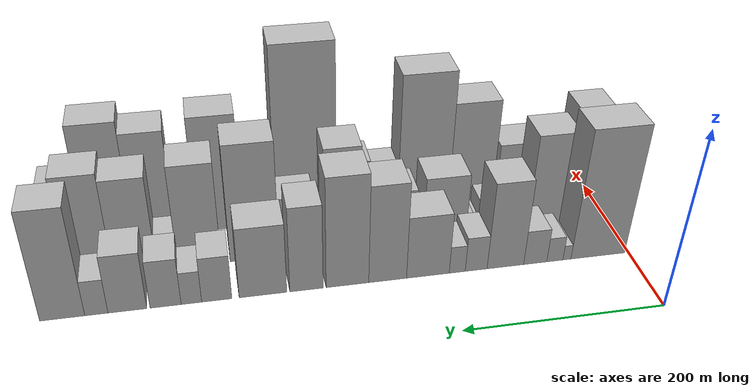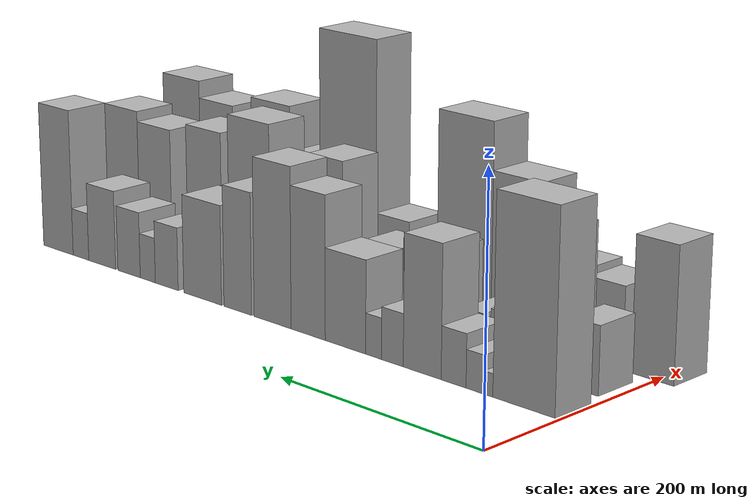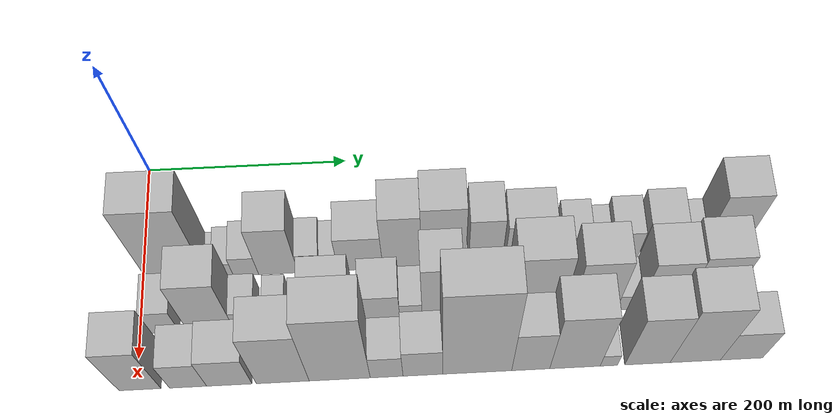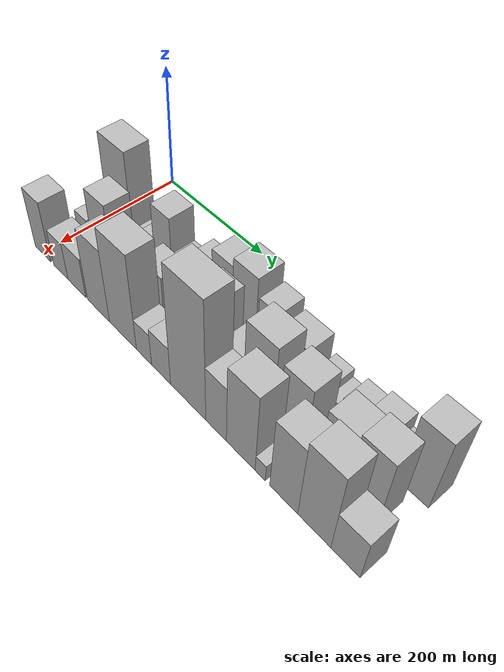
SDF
<sdf version="1.6">
 <world name="default">
  <model name="building_20">
   <static>1</static>
   <pose>100.0000 33.2290 0 0.000000 0.000000 0.000000</pose>
   <link name="link">
    <pose>0 0 78.00 0 0 0</pose>
    <collision name="collision"><geometry><box><size>40.0000 58.2275 156.0000</size></box></geometry></collision>
    <visual name="visual">
     <cast_shadows>0</cast_shadows>
     <geometry><box><size>40.0000 58.2275 156.0000</size></box></geometry>
     <material>
      <script>
       <uri>model://HANNAS_wall/materials/scripts</uri>
       <uri>model://HANNAS_wall/materials/textures</uri>
       <name>vrc/HANNAS_wall</name>
      </script>
     </material>
    </visual>
   </link>
  </model>
  <model name="building_21">
   <static>1</static>
   <pose>100.0000 66.6488 0 0.000000 0.000000 0.000000</pose>
   <link name="link">
    <pose>0 0 9.00 0 0 0</pose>
    <collision name="collision"><geometry><box><size>40.0000 8.6122 18.0000</size></box></geometry></collision>
    <visual name="visual">
     <cast_shadows>0</cast_shadows>
     <geometry><box><size>40.0000 8.6122 18.0000</size></box></geometry>
     <material>
      <script>
       <uri>model://HANNAS_wall/materials/scripts</uri>
       <uri>model://HANNAS_wall/materials/textures</uri>
       <name>vrc/HANNAS_wall</name>
      </script>
     </material>
    </visual>
   </link>
  </model>
  <model name="building_22">
   <static>1</static>
   <pose>100.0000 79.5975 0 0.000000 0.000000 0.000000</pose>
   <link name="link">
    <pose>0 0 15.00 0 0 0</pose>
    <collision name="collision"><geometry><box><size>40.0000 17.2851 30.0000</size></box></geometry></collision>
    <visual name="visual">
     <cast_shadows>0</cast_shadows>
     <geometry><box><size>40.0000 17.2851 30.0000</size></box></geometry>
     <material>
      <script>
       <uri>model://HANNAS_wall/materials/scripts</uri>
       <uri>model://HANNAS_wall/materials/textures</uri>
       <name>vrc/HANNAS_wall</name>
      </script>
     </material>
    </visual>
   </link>
  </model>
  <model name="building_23">
   <static>1</static>
   <pose>100.0000 100.5448 0 0.000000 0.000000 0.000000</pose>
   <link name="link">
    <pose>0 0 21.00 0 0 0</pose>
    <collision name="collision"><geometry><box><size>40.0000 24.6096 42.0000</size></box></geometry></collision>
    <visual name="visual">
     <cast_shadows>0</cast_shadows>
     <geometry><box><size>40.0000 24.6096 42.0000</size></box></geometry>
     <material>
      <script>
       <uri>model://HANNAS_wall/materials/scripts</uri>
       <uri>model://HANNAS_wall/materials/textures</uri>
       <name>vrc/HANNAS_wall</name>
      </script>
     </material>
    </visual>
   </link>
  </model>
  <model name="building_24">
   <static>1</static>
   <pose>100.0000 132.1193 0 0.000000 0.000000 0.000000</pose>
   <link name="link">
    <pose>0 0 52.50 0 0 0</pose>
    <collision name="collision"><geometry><box><size>40.0000 38.5394 105.0000</size></box></geometry></collision>
    <visual name="visual">
     <cast_shadows>0</cast_shadows>
     <geometry><box><size>40.0000 38.5394 105.0000</size></box></geometry>
     <material>
      <script>
       <uri>model://HANNAS_wall/materials/scripts</uri>
       <uri>model://HANNAS_wall/materials/textures</uri>
       <name>vrc/HANNAS_wall</name>
      </script>
     </material>
    </visual>
   </link>
  </model>
  <model name="building_25">
   <static>1</static>
   <pose>100.0000 162.7643 0 0.000000 0.000000 0.000000</pose>
   <link name="link">
    <pose>0 0 21.00 0 0 0</pose>
    <collision name="collision"><geometry><box><size>40.0000 22.7505 42.0000</size></box></geometry></collision>
    <visual name="visual">
     <cast_shadows>0</cast_shadows>
     <geometry><box><size>40.0000 22.7505 42.0000</size></box></geometry>
     <material>
      <script>
       <uri>model://HANNAS_wall/materials/scripts</uri>
       <uri>model://HANNAS_wall/materials/textures</uri>
       <name>vrc/HANNAS_wall</name>
      </script>
     </material>
    </visual>
   </link>
  </model>
  <model name="building_26">
   <static>1</static>
   <pose>100.0000 182.4364 0 0.000000 0.000000 0.000000</pose>
   <link name="link">
    <pose>0 0 16.50 0 0 0</pose>
    <collision name="collision"><geometry><box><size>40.0000 16.5937 33.0000</size></box></geometry></collision>
    <visual name="visual">
     <cast_shadows>0</cast_shadows>
     <geometry><box><size>40.0000 16.5937 33.0000</size></box></geometry>
     <material>
      <script>
       <uri>model://HANNAS_wall/materials/scripts</uri>
       <uri>model://HANNAS_wall/materials/textures</uri>
       <name>vrc/HANNAS_wall</name>
      </script>
     </material>
    </visual>
   </link>
  </model>
  <model name="building_27">
   <static>1</static>
   <pose>100.0000 212.7019 0 0.000000 0.000000 0.000000</pose>
   <link name="link">
    <pose>0 0 37.50 0 0 0</pose>
    <collision name="collision"><geometry><box><size>40.0000 43.9373 75.0000</size></box></geometry></collision>
    <visual name="visual">
     <cast_shadows>0</cast_shadows>
     <geometry><box><size>40.0000 43.9373 75.0000</size></box></geometry>
     <material>
      <script>
       <uri>model://HANNAS_wall/materials/scripts</uri>
       <uri>model://HANNAS_wall/materials/textures</uri>
       <name>vrc/HANNAS_wall</name>
      </script>
     </material>
    </visual>
   </link>
  </model>
  <model name="building_28">
   <static>1</static>
   <pose>100.0000 253.8108 0 0.000000 0.000000 0.000000</pose>
   <link name="link">
    <pose>0 0 58.50 0 0 0</pose>
    <collision name="collision"><geometry><box><size>40.0000 38.2804 117.0000</size></box></geometry></collision>
    <visual name="visual">
     <cast_shadows>0</cast_shadows>
     <geometry><box><size>40.0000 38.2804 117.0000</size></box></geometry>
     <material>
      <script>
       <uri>model://HANNAS_wall/materials/scripts</uri>
       <uri>model://HANNAS_wall/materials/textures</uri>
       <name>vrc/HANNAS_wall</name>
      </script>
     </material>
    </visual>
   </link>
  </model>
  <model name="building_29">
   <static>1</static>
   <pose>100.0000 294.3187 0 0.000000 0.000000 0.000000</pose>
   <link name="link">
    <pose>0 0 66.00 0 0 0</pose>
    <collision name="collision"><geometry><box><size>40.0000 42.7354 132.0000</size></box></geometry></collision>
    <visual name="visual">
     <cast_shadows>0</cast_shadows>
     <geometry><box><size>40.0000 42.7354 132.0000</size></box></geometry>
     <material>
      <script>
       <uri>model://HANNAS_wall/materials/scripts</uri>
       <uri>model://HANNAS_wall/materials/textures</uri>
       <name>vrc/HANNAS_wall</name>
      </script>
     </material>
    </visual>
   </link>
  </model>
  <model name="building_30">
   <static>1</static>
   <pose>100.0000 335.1427 0 0.000000 0.000000 0.000000</pose>
   <link name="link">
    <pose>0 0 51.00 0 0 0</pose>
    <collision name="collision"><geometry><box><size>40.0000 32.9125 102.0000</size></box></geometry></collision>
    <visual name="visual">
     <cast_shadows>0</cast_shadows>
     <geometry><box><size>40.0000 32.9125 102.0000</size></box></geometry>
     <material>
      <script>
       <uri>model://HANNAS_wall/materials/scripts</uri>
       <uri>model://HANNAS_wall/materials/textures</uri>
       <name>vrc/HANNAS_wall</name>
      </script>
     </material>
    </visual>
   </link>
  </model>
  <model name="building_31">
   <static>1</static>
   <pose>100.0000 377.8767 0 0.000000 0.000000 0.000000</pose>
   <link name="link">
    <pose>0 0 42.00 0 0 0</pose>
    <collision name="collision"><geometry><box><size>40.0000 46.5556 84.0000</size></box></geometry></collision>
    <visual name="visual">
     <cast_shadows>0</cast_shadows>
     <geometry><box><size>40.0000 46.5556 84.0000</size></box></geometry>
     <material>
      <script>
       <uri>model://HANNAS_wall/materials/scripts</uri>
       <uri>model://HANNAS_wall/materials/textures</uri>
       <name>vrc/HANNAS_wall</name>
      </script>
     </material>
    </visual>
   </link>
  </model>
  <model name="building_32">
   <static>1</static>
   <pose>100.0000 422.6881 0 0.000000 0.000000 0.000000</pose>
   <link name="link">
    <pose>0 0 27.00 0 0 0</pose>
    <collision name="collision"><geometry><box><size>40.0000 29.0671 54.0000</size></box></geometry></collision>
    <visual name="visual">
     <cast_shadows>0</cast_shadows>
     <geometry><box><size>40.0000 29.0671 54.0000</size></box></geometry>
     <material>
      <script>
       <uri>model://HANNAS_wall/materials/scripts</uri>
       <uri>model://HANNAS_wall/materials/textures</uri>
       <name>vrc/HANNAS_wall</name>
      </script>
     </material>
    </visual>
   </link>
  </model>
  <model name="building_33">
   <static>1</static>
   <pose>100.0000 447.0057 0 0.000000 0.000000 0.000000</pose>
   <link name="link">
    <pose>0 0 19.50 0 0 0</pose>
    <collision name="collision"><geometry><box><size>40.0000 19.5682 39.0000</size></box></geometry></collision>
    <visual name="visual">
     <cast_shadows>0</cast_shadows>
     <geometry><box><size>40.0000 19.5682 39.0000</size></box></geometry>
     <material>
      <script>
       <uri>model://HANNAS_wall/materials/scripts</uri>
       <uri>model://HANNAS_wall/materials/textures</uri>
       <name>vrc/HANNAS_wall</name>
      </script>
     </material>
    </visual>
   </link>
  </model>
  <model name="building_34">
   <static>1</static>
   <pose>100.0000 471.5658 0 0.000000 0.000000 0.000000</pose>
   <link name="link">
    <pose>0 0 28.50 0 0 0</pose>
    <collision name="collision"><geometry><box><size>40.0000 29.5520 57.0000</size></box></geometry></collision>
    <visual name="visual">
     <cast_shadows>0</cast_shadows>
     <geometry><box><size>40.0000 29.5520 57.0000</size></box></geometry>
     <material>
      <script>
       <uri>model://HANNAS_wall/materials/scripts</uri>
       <uri>model://HANNAS_wall/materials/textures</uri>
       <name>vrc/HANNAS_wall</name>
      </script>
     </material>
    </visual>
   </link>
  </model>
  <model name="building_35">
   <static>1</static>
   <pose>100.0000 507.5285 0 0.000000 0.000000 0.000000</pose>
   <link name="link">
    <pose>0 0 34.50 0 0 0</pose>
    <collision name="collision"><geometry><box><size>40.0000 36.3733 69.0000</size></box></geometry></collision>
    <visual name="visual">
     <cast_shadows>0</cast_shadows>
     <geometry><box><size>40.0000 36.3733 69.0000</size></box></geometry>
     <material>
      <script>
       <uri>model://HANNAS_wall/materials/scripts</uri>
       <uri>model://HANNAS_wall/materials/textures</uri>
       <name>vrc/HANNAS_wall</name>
      </script>
     </material>
    </visual>
   </link>
  </model>
  <model name="building_36">
   <static>1</static>
   <pose>100.0000 536.4950 0 0.000000 0.000000 0.000000</pose>
   <link name="link">
    <pose>0 0 21.00 0 0 0</pose>
    <collision name="collision"><geometry><box><size>40.0000 21.5597 42.0000</size></box></geometry></collision>
    <visual name="visual">
     <cast_shadows>0</cast_shadows>
     <geometry><box><size>40.0000 21.5597 42.0000</size></box></geometry>
     <material>
      <script>
       <uri>model://HANNAS_wall/materials/scripts</uri>
       <uri>model://HANNAS_wall/materials/textures</uri>
       <name>vrc/HANNAS_wall</name>
      </script>
     </material>
    </visual>
   </link>
  </model>
  <model name="building_37">
   <static>1</static>
   <pose>100.0000 568.0260 0 0.000000 0.000000 0.000000</pose>
   <link name="link">
    <pose>0 0 64.50 0 0 0</pose>
    <collision name="collision"><geometry><box><size>40.0000 41.5023 129.0000</size></box></geometry></collision>
    <visual name="visual">
     <cast_shadows>0</cast_shadows>
     <geometry><box><size>40.0000 41.5023 129.0000</size></box></geometry>
     <material>
      <script>
       <uri>model://HANNAS_wall/materials/scripts</uri>
       <uri>model://HANNAS_wall/materials/textures</uri>
       <name>vrc/HANNAS_wall</name>
      </script>
     </material>
    </visual>
   </link>
  </model>
  <model name="building_52">
   <static>1</static>
   <pose>155.0000 23.7741 0 0.000000 0.000000 0.000000</pose>
   <link name="link">
    <pose>0 0 27.00 0 0 0</pose>
    <collision name="collision"><geometry><box><size>40.0000 28.3925 54.0000</size></box></geometry></collision>
    <visual name="visual">
     <cast_shadows>0</cast_shadows>
     <geometry><box><size>40.0000 28.3925 54.0000</size></box></geometry>
     <material>
      <script>
       <uri>model://HANNAS_wall/materials/scripts</uri>
       <uri>model://HANNAS_wall/materials/textures</uri>
       <name>vrc/HANNAS_wall</name>
      </script>
     </material>
    </visual>
   </link>
  </model>
  <model name="building_53">
   <static>1</static>
   <pose>155.0000 67.9589 0 0.000000 0.000000 0.000000</pose>
   <link name="link">
    <pose>0 0 58.50 0 0 0</pose>
    <collision name="collision"><geometry><box><size>40.0000 43.9771 117.0000</size></box></geometry></collision>
    <visual name="visual">
     <cast_shadows>0</cast_shadows>
     <geometry><box><size>40.0000 43.9771 117.0000</size></box></geometry>
     <material>
      <script>
       <uri>model://HANNAS_wall/materials/scripts</uri>
       <uri>model://HANNAS_wall/materials/textures</uri>
       <name>vrc/HANNAS_wall</name>
      </script>
     </material>
    </visual>
   </link>
  </model>
  <model name="building_54">
   <static>1</static>
   <pose>155.0000 101.7364 0 0.000000 0.000000 0.000000</pose>
   <link name="link">
    <pose>0 0 21.00 0 0 0</pose>
    <collision name="collision"><geometry><box><size>40.0000 23.5777 42.0000</size></box></geometry></collision>
    <visual name="visual">
     <cast_shadows>0</cast_shadows>
     <geometry><box><size>40.0000 23.5777 42.0000</size></box></geometry>
     <material>
      <script>
       <uri>model://HANNAS_wall/materials/scripts</uri>
       <uri>model://HANNAS_wall/materials/textures</uri>
       <name>vrc/HANNAS_wall</name>
      </script>
     </material>
    </visual>
   </link>
  </model>
  <model name="building_55">
   <static>1</static>
   <pose>155.0000 131.0932 0 0.000000 0.000000 0.000000</pose>
   <link name="link">
    <pose>0 0 18.00 0 0 0</pose>
    <collision name="collision"><geometry><box><size>40.0000 21.1361 36.0000</size></box></geometry></collision>
    <visual name="visual">
     <cast_shadows>0</cast_shadows>
     <geometry><box><size>40.0000 21.1361 36.0000</size></box></geometry>
     <material>
      <script>
       <uri>model://HANNAS_wall/materials/scripts</uri>
       <uri>model://HANNAS_wall/materials/textures</uri>
       <name>vrc/HANNAS_wall</name>
      </script>
     </material>
    </visual>
   </link>
  </model>
  <model name="building_56">
   <static>1</static>
   <pose>155.0000 144.7560 0 0.000000 0.000000 0.000000</pose>
   <link name="link">
    <pose>0 0 7.50 0 0 0</pose>
    <collision name="collision"><geometry><box><size>40.0000 6.1895 15.0000</size></box></geometry></collision>
    <visual name="visual">
     <cast_shadows>0</cast_shadows>
     <geometry><box><size>40.0000 6.1895 15.0000</size></box></geometry>
     <material>
      <script>
       <uri>model://HANNAS_wall/materials/scripts</uri>
       <uri>model://HANNAS_wall/materials/textures</uri>
       <name>vrc/HANNAS_wall</name>
      </script>
     </material>
    </visual>
   </link>
  </model>
  <model name="building_57">
   <static>1</static>
   <pose>155.0000 152.7059 0 0.000000 0.000000 0.000000</pose>
   <link name="link">
    <pose>0 0 10.50 0 0 0</pose>
    <collision name="collision"><geometry><box><size>40.0000 9.7101 21.0000</size></box></geometry></collision>
    <visual name="visual">
     <cast_shadows>0</cast_shadows>
     <geometry><box><size>40.0000 9.7101 21.0000</size></box></geometry>
     <material>
      <script>
       <uri>model://HANNAS_wall/materials/scripts</uri>
       <uri>model://HANNAS_wall/materials/textures</uri>
       <name>vrc/HANNAS_wall</name>
      </script>
     </material>
    </visual>
   </link>
  </model>
  <model name="building_58">
   <static>1</static>
   <pose>155.0000 180.6804 0 0.000000 0.000000 0.000000</pose>
   <link name="link">
    <pose>0 0 39.00 0 0 0</pose>
    <collision name="collision"><geometry><box><size>40.0000 46.2390 78.0000</size></box></geometry></collision>
    <visual name="visual">
     <cast_shadows>0</cast_shadows>
     <geometry><box><size>40.0000 46.2390 78.0000</size></box></geometry>
     <material>
      <script>
       <uri>model://HANNAS_wall/materials/scripts</uri>
       <uri>model://HANNAS_wall/materials/textures</uri>
       <name>vrc/HANNAS_wall</name>
      </script>
     </material>
    </visual>
   </link>
  </model>
  <model name="building_59">
   <static>1</static>
   <pose>155.0000 230.5927 0 0.000000 0.000000 0.000000</pose>
   <link name="link">
    <pose>0 0 33.00 0 0 0</pose>
    <collision name="collision"><geometry><box><size>40.0000 37.5855 66.0000</size></box></geometry></collision>
    <visual name="visual">
     <cast_shadows>0</cast_shadows>
     <geometry><box><size>40.0000 37.5855 66.0000</size></box></geometry>
     <material>
      <script>
       <uri>model://HANNAS_wall/materials/scripts</uri>
       <uri>model://HANNAS_wall/materials/textures</uri>
       <name>vrc/HANNAS_wall</name>
      </script>
     </material>
    </visual>
   </link>
  </model>
  <model name="building_60">
   <static>1</static>
   <pose>155.0000 260.0713 0 0.000000 0.000000 0.000000</pose>
   <link name="link">
    <pose>0 0 21.00 0 0 0</pose>
    <collision name="collision"><geometry><box><size>40.0000 21.3718 42.0000</size></box></geometry></collision>
    <visual name="visual">
     <cast_shadows>0</cast_shadows>
     <geometry><box><size>40.0000 21.3718 42.0000</size></box></geometry>
     <material>
      <script>
       <uri>model://HANNAS_wall/materials/scripts</uri>
       <uri>model://HANNAS_wall/materials/textures</uri>
       <name>vrc/HANNAS_wall</name>
      </script>
     </material>
    </visual>
   </link>
  </model>
  <model name="building_61">
   <static>1</static>
   <pose>155.0000 289.8224 0 0.000000 0.000000 0.000000</pose>
   <link name="link">
    <pose>0 0 63.00 0 0 0</pose>
    <collision name="collision"><geometry><box><size>40.0000 38.1304 126.0000</size></box></geometry></collision>
    <visual name="visual">
     <cast_shadows>0</cast_shadows>
     <geometry><box><size>40.0000 38.1304 126.0000</size></box></geometry>
     <material>
      <script>
       <uri>model://HANNAS_wall/materials/scripts</uri>
       <uri>model://HANNAS_wall/materials/textures</uri>
       <name>vrc/HANNAS_wall</name>
      </script>
     </material>
    </visual>
   </link>
  </model>
  <model name="building_62">
   <static>1</static>
   <pose>155.0000 336.8014 0 0.000000 0.000000 0.000000</pose>
   <link name="link">
    <pose>0 0 36.00 0 0 0</pose>
    <collision name="collision"><geometry><box><size>40.0000 37.8276 72.0000</size></box></geometry></collision>
    <visual name="visual">
     <cast_shadows>0</cast_shadows>
     <geometry><box><size>40.0000 37.8276 72.0000</size></box></geometry>
     <material>
      <script>
       <uri>model://HANNAS_wall/materials/scripts</uri>
       <uri>model://HANNAS_wall/materials/textures</uri>
       <name>vrc/HANNAS_wall</name>
      </script>
     </material>
    </visual>
   </link>
  </model>
  <model name="building_63">
   <static>1</static>
   <pose>155.0000 380.7532 0 0.000000 0.000000 0.000000</pose>
   <link name="link">
    <pose>0 0 70.50 0 0 0</pose>
    <collision name="collision"><geometry><box><size>40.0000 50.0759 141.0000</size></box></geometry></collision>
    <visual name="visual">
     <cast_shadows>0</cast_shadows>
     <geometry><box><size>40.0000 50.0759 141.0000</size></box></geometry>
     <material>
      <script>
       <uri>model://HANNAS_wall/materials/scripts</uri>
       <uri>model://HANNAS_wall/materials/textures</uri>
       <name>vrc/HANNAS_wall</name>
      </script>
     </material>
    </visual>
   </link>
  </model>
  <model name="building_64">
   <static>1</static>
   <pose>155.0000 436.6621 0 0.000000 0.000000 0.000000</pose>
   <link name="link">
    <pose>0 0 61.50 0 0 0</pose>
    <collision name="collision"><geometry><box><size>40.0000 43.7420 123.0000</size></box></geometry></collision>
    <visual name="visual">
     <cast_shadows>0</cast_shadows>
     <geometry><box><size>40.0000 43.7420 123.0000</size></box></geometry>
     <material>
      <script>
       <uri>model://HANNAS_wall/materials/scripts</uri>
       <uri>model://HANNAS_wall/materials/textures</uri>
       <name>vrc/HANNAS_wall</name>
      </script>
     </material>
    </visual>
   </link>
  </model>
  <model name="building_65">
   <static>1</static>
   <pose>155.0000 468.9399 0 0.000000 0.000000 0.000000</pose>
   <link name="link">
    <pose>0 0 18.00 0 0 0</pose>
    <collision name="collision"><geometry><box><size>40.0000 20.8135 36.0000</size></box></geometry></collision>
    <visual name="visual">
     <cast_shadows>0</cast_shadows>
     <geometry><box><size>40.0000 20.8135 36.0000</size></box></geometry>
     <material>
      <script>
       <uri>model://HANNAS_wall/materials/scripts</uri>
       <uri>model://HANNAS_wall/materials/textures</uri>
       <name>vrc/HANNAS_wall</name>
      </script>
     </material>
    </visual>
   </link>
  </model>
  <model name="building_66">
   <static>1</static>
   <pose>155.0000 500.9009 0 0.000000 0.000000 0.000000</pose>
   <link name="link">
    <pose>0 0 57.00 0 0 0</pose>
    <collision name="collision"><geometry><box><size>40.0000 43.1086 114.0000</size></box></geometry></collision>
    <visual name="visual">
     <cast_shadows>0</cast_shadows>
     <geometry><box><size>40.0000 43.1086 114.0000</size></box></geometry>
     <material>
      <script>
       <uri>model://HANNAS_wall/materials/scripts</uri>
       <uri>model://HANNAS_wall/materials/textures</uri>
       <name>vrc/HANNAS_wall</name>
      </script>
     </material>
    </visual>
   </link>
  </model>
  <model name="building_67">
   <static>1</static>
   <pose>155.0000 544.3453 0 0.000000 0.000000 0.000000</pose>
   <link name="link">
    <pose>0 0 61.50 0 0 0</pose>
    <collision name="collision"><geometry><box><size>40.0000 43.7800 123.0000</size></box></geometry></collision>
    <visual name="visual">
     <cast_shadows>0</cast_shadows>
     <geometry><box><size>40.0000 43.7800 123.0000</size></box></geometry>
     <material>
      <script>
       <uri>model://HANNAS_wall/materials/scripts</uri>
       <uri>model://HANNAS_wall/materials/textures</uri>
       <name>vrc/HANNAS_wall</name>
      </script>
     </material>
    </visual>
   </link>
  </model>
  <model name="building_82">
   <static>1</static>
   <pose>210.0000 2.9194 0 0.000000 0.000000 0.000000</pose>
   <link name="link">
    <pose>0 0 54.00 0 0 0</pose>
    <collision name="collision"><geometry><box><size>40.0000 39.2048 108.0000</size></box></geometry></collision>
    <visual name="visual">
     <cast_shadows>0</cast_shadows>
     <geometry><box><size>40.0000 39.2048 108.0000</size></box></geometry>
     <material>
      <script>
       <uri>model://HANNAS_wall/materials/scripts</uri>
       <uri>model://HANNAS_wall/materials/textures</uri>
       <name>vrc/HANNAS_wall</name>
      </script>
     </material>
    </visual>
   </link>
  </model>
  <model name="building_83">
   <static>1</static>
   <pose>210.0000 47.9344 0 0.000000 0.000000 0.000000</pose>
   <link name="link">
    <pose>0 0 33.00 0 0 0</pose>
    <collision name="collision"><geometry><box><size>40.0000 34.8252 66.0000</size></box></geometry></collision>
    <visual name="visual">
     <cast_shadows>0</cast_shadows>
     <geometry><box><size>40.0000 34.8252 66.0000</size></box></geometry>
     <material>
      <script>
       <uri>model://HANNAS_wall/materials/scripts</uri>
       <uri>model://HANNAS_wall/materials/textures</uri>
       <name>vrc/HANNAS_wall</name>
      </script>
     </material>
    </visual>
   </link>
  </model>
  <model name="building_84">
   <static>1</static>
   <pose>210.0000 86.5903 0 0.000000 0.000000 0.000000</pose>
   <link name="link">
    <pose>0 0 36.00 0 0 0</pose>
    <collision name="collision"><geometry><box><size>40.0000 42.4867 72.0000</size></box></geometry></collision>
    <visual name="visual">
     <cast_shadows>0</cast_shadows>
     <geometry><box><size>40.0000 42.4867 72.0000</size></box></geometry>
     <material>
      <script>
       <uri>model://HANNAS_wall/materials/scripts</uri>
       <uri>model://HANNAS_wall/materials/textures</uri>
       <name>vrc/HANNAS_wall</name>
      </script>
     </material>
    </visual>
   </link>
  </model>
  <model name="building_85">
   <static>1</static>
   <pose>210.0000 136.7199 0 0.000000 0.000000 0.000000</pose>
   <link name="link">
    <pose>0 0 64.50 0 0 0</pose>
    <collision name="collision"><geometry><box><size>40.0000 49.7726 129.0000</size></box></geometry></collision>
    <visual name="visual">
     <cast_shadows>0</cast_shadows>
     <geometry><box><size>40.0000 49.7726 129.0000</size></box></geometry>
     <material>
      <script>
       <uri>model://HANNAS_wall/materials/scripts</uri>
       <uri>model://HANNAS_wall/materials/textures</uri>
       <name>vrc/HANNAS_wall</name>
      </script>
     </material>
    </visual>
   </link>
  </model>
  <model name="building_86">
   <static>1</static>
   <pose>210.0000 190.3500 0 0.000000 0.000000 0.000000</pose>
   <link name="link">
    <pose>0 0 84.00 0 0 0</pose>
    <collision name="collision"><geometry><box><size>40.0000 57.4876 168.0000</size></box></geometry></collision>
    <visual name="visual">
     <cast_shadows>0</cast_shadows>
     <geometry><box><size>40.0000 57.4876 168.0000</size></box></geometry>
     <material>
      <script>
       <uri>model://HANNAS_wall/materials/scripts</uri>
       <uri>model://HANNAS_wall/materials/textures</uri>
       <name>vrc/HANNAS_wall</name>
      </script>
     </material>
    </visual>
   </link>
  </model>
  <model name="building_87">
   <static>1</static>
   <pose>210.0000 234.5464 0 0.000000 0.000000 0.000000</pose>
   <link name="link">
    <pose>0 0 28.50 0 0 0</pose>
    <collision name="collision"><geometry><box><size>40.0000 30.9052 57.0000</size></box></geometry></collision>
    <visual name="visual">
     <cast_shadows>0</cast_shadows>
     <geometry><box><size>40.0000 30.9052 57.0000</size></box></geometry>
     <material>
      <script>
       <uri>model://HANNAS_wall/materials/scripts</uri>
       <uri>model://HANNAS_wall/materials/textures</uri>
       <name>vrc/HANNAS_wall</name>
      </script>
     </material>
    </visual>
   </link>
  </model>
  <model name="building_88">
   <static>1</static>
   <pose>210.0000 268.6585 0 0.000000 0.000000 0.000000</pose>
   <link name="link">
    <pose>0 0 34.50 0 0 0</pose>
    <collision name="collision"><geometry><box><size>40.0000 37.3191 69.0000</size></box></geometry></collision>
    <visual name="visual">
     <cast_shadows>0</cast_shadows>
     <geometry><box><size>40.0000 37.3191 69.0000</size></box></geometry>
     <material>
      <script>
       <uri>model://HANNAS_wall/materials/scripts</uri>
       <uri>model://HANNAS_wall/materials/textures</uri>
       <name>vrc/HANNAS_wall</name>
      </script>
     </material>
    </visual>
   </link>
  </model>
  <model name="building_89">
   <static>1</static>
   <pose>210.0000 320.0314 0 0.000000 0.000000 0.000000</pose>
   <link name="link">
    <pose>0 0 106.50 0 0 0</pose>
    <collision name="collision"><geometry><box><size>40.0000 65.4266 213.0000</size></box></geometry></collision>
    <visual name="visual">
     <cast_shadows>0</cast_shadows>
     <geometry><box><size>40.0000 65.4266 213.0000</size></box></geometry>
     <material>
      <script>
       <uri>model://HANNAS_wall/materials/scripts</uri>
       <uri>model://HANNAS_wall/materials/textures</uri>
       <name>vrc/HANNAS_wall</name>
      </script>
     </material>
    </visual>
   </link>
  </model>
  <model name="building_90">
   <static>1</static>
   <pose>210.0000 370.7721 0 0.000000 0.000000 0.000000</pose>
   <link name="link">
    <pose>0 0 51.00 0 0 0</pose>
    <collision name="collision"><geometry><box><size>40.0000 36.0549 102.0000</size></box></geometry></collision>
    <visual name="visual">
     <cast_shadows>0</cast_shadows>
     <geometry><box><size>40.0000 36.0549 102.0000</size></box></geometry>
     <material>
      <script>
       <uri>model://HANNAS_wall/materials/scripts</uri>
       <uri>model://HANNAS_wall/materials/textures</uri>
       <name>vrc/HANNAS_wall</name>
      </script>
     </material>
    </visual>
   </link>
  </model>
  <model name="building_91">
   <static>1</static>
   <pose>210.0000 412.7776 0 0.000000 0.000000 0.000000</pose>
   <link name="link">
    <pose>0 0 70.50 0 0 0</pose>
    <collision name="collision"><geometry><box><size>40.0000 47.9562 141.0000</size></box></geometry></collision>
    <visual name="visual">
     <cast_shadows>0</cast_shadows>
     <geometry><box><size>40.0000 47.9562 141.0000</size></box></geometry>
     <material>
      <script>
       <uri>model://HANNAS_wall/materials/scripts</uri>
       <uri>model://HANNAS_wall/materials/textures</uri>
       <name>vrc/HANNAS_wall</name>
      </script>
     </material>
    </visual>
   </link>
  </model>
  <model name="building_92">
   <static>1</static>
   <pose>210.0000 444.9559 0 0.000000 0.000000 0.000000</pose>
   <link name="link">
    <pose>0 0 15.00 0 0 0</pose>
    <collision name="collision"><geometry><box><size>40.0000 16.4004 30.0000</size></box></geometry></collision>
    <visual name="visual">
     <cast_shadows>0</cast_shadows>
     <geometry><box><size>40.0000 16.4004 30.0000</size></box></geometry>
     <material>
      <script>
       <uri>model://HANNAS_wall/materials/scripts</uri>
       <uri>model://HANNAS_wall/materials/textures</uri>
       <name>vrc/HANNAS_wall</name>
      </script>
     </material>
    </visual>
   </link>
  </model>
  <model name="building_93">
   <static>1</static>
   <pose>210.0000 481.7699 0 0.000000 0.000000 0.000000</pose>
   <link name="link">
    <pose>0 0 64.50 0 0 0</pose>
    <collision name="collision"><geometry><box><size>40.0000 43.2276 129.0000</size></box></geometry></collision>
    <visual name="visual">
     <cast_shadows>0</cast_shadows>
     <geometry><box><size>40.0000 43.2276 129.0000</size></box></geometry>
     <material>
      <script>
       <uri>model://HANNAS_wall/materials/scripts</uri>
       <uri>model://HANNAS_wall/materials/textures</uri>
       <name>vrc/HANNAS_wall</name>
      </script>
     </material>
    </visual>
   </link>
  </model>
  <model name="building_94">
   <static>1</static>
   <pose>210.0000 527.4832 0 0.000000 0.000000 0.000000</pose>
   <link name="link">
    <pose>0 0 72.00 0 0 0</pose>
    <collision name="collision"><geometry><box><size>40.0000 48.1990 144.0000</size></box></geometry></collision>
    <visual name="visual">
     <cast_shadows>0</cast_shadows>
     <geometry><box><size>40.0000 48.1990 144.0000</size></box></geometry>
     <material>
      <script>
       <uri>model://HANNAS_wall/materials/scripts</uri>
       <uri>model://HANNAS_wall/materials/textures</uri>
       <name>vrc/HANNAS_wall</name>
      </script>
     </material>
    </visual>
   </link>
  </model>
  <model name="building_95">
   <static>1</static>
   <pose>210.0000 571.7580 0 0.000000 0.000000 0.000000</pose>
   <link name="link">
    <pose>0 0 37.50 0 0 0</pose>
    <collision name="collision"><geometry><box><size>40.0000 40.3505 75.0000</size></box></geometry></collision>
    <visual name="visual">
     <cast_shadows>0</cast_shadows>
     <geometry><box><size>40.0000 40.3505 75.0000</size></box></geometry>
     <material>
      <script>
       <uri>model://HANNAS_wall/materials/scripts</uri>
       <uri>model://HANNAS_wall/materials/textures</uri>
       <name>vrc/HANNAS_wall</name>
      </script>
     </material>
    </visual>
   </link>
  </model>
 </world>
</sdf>
